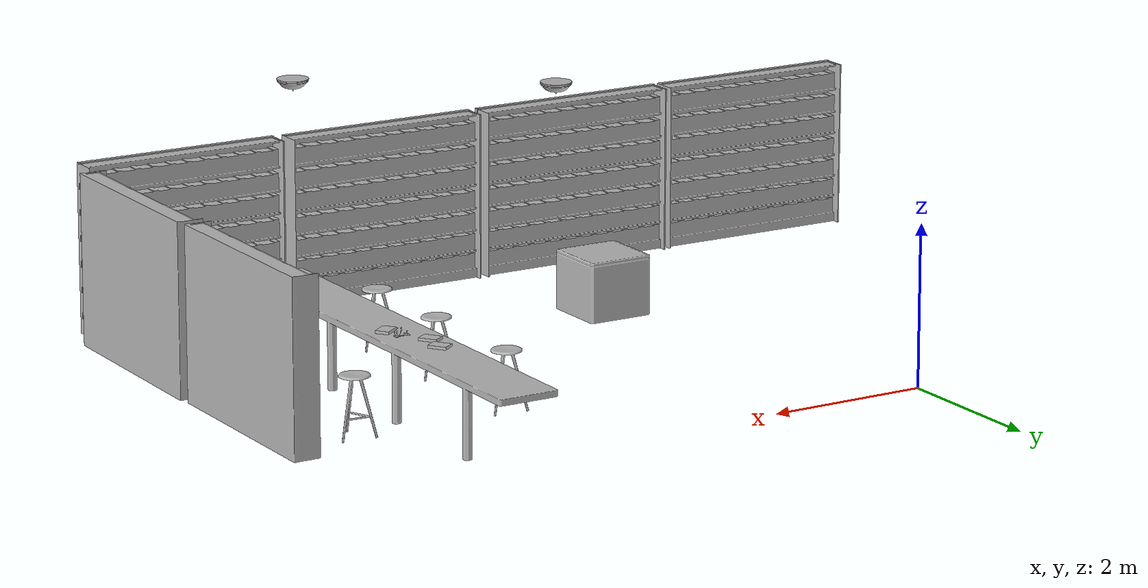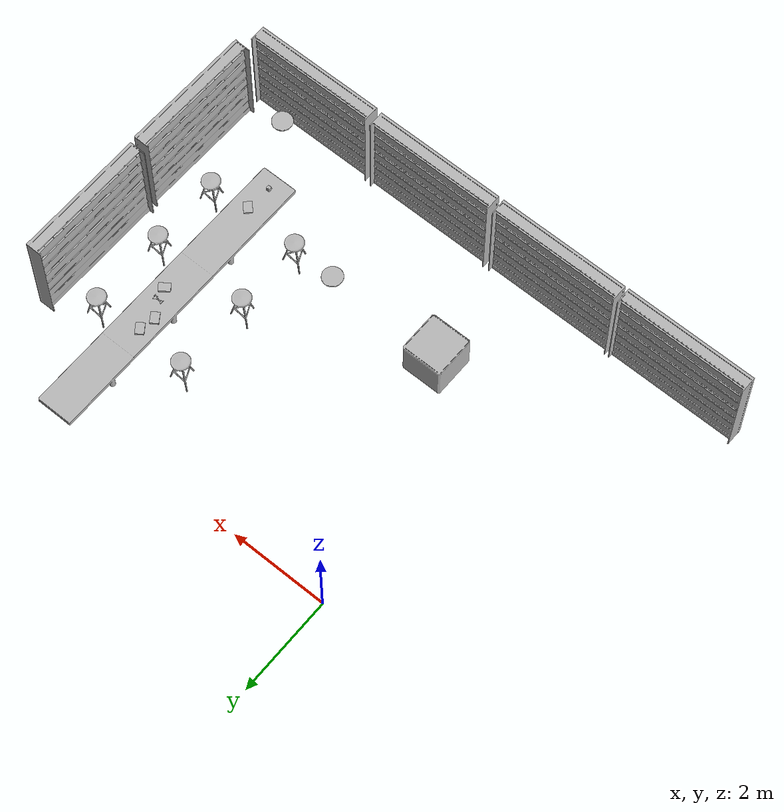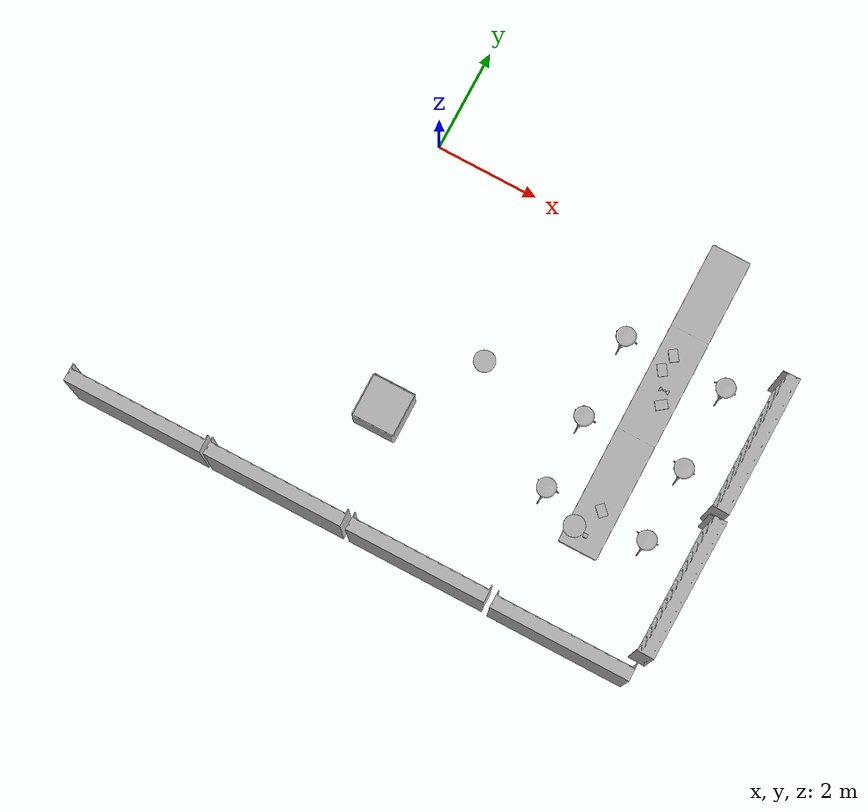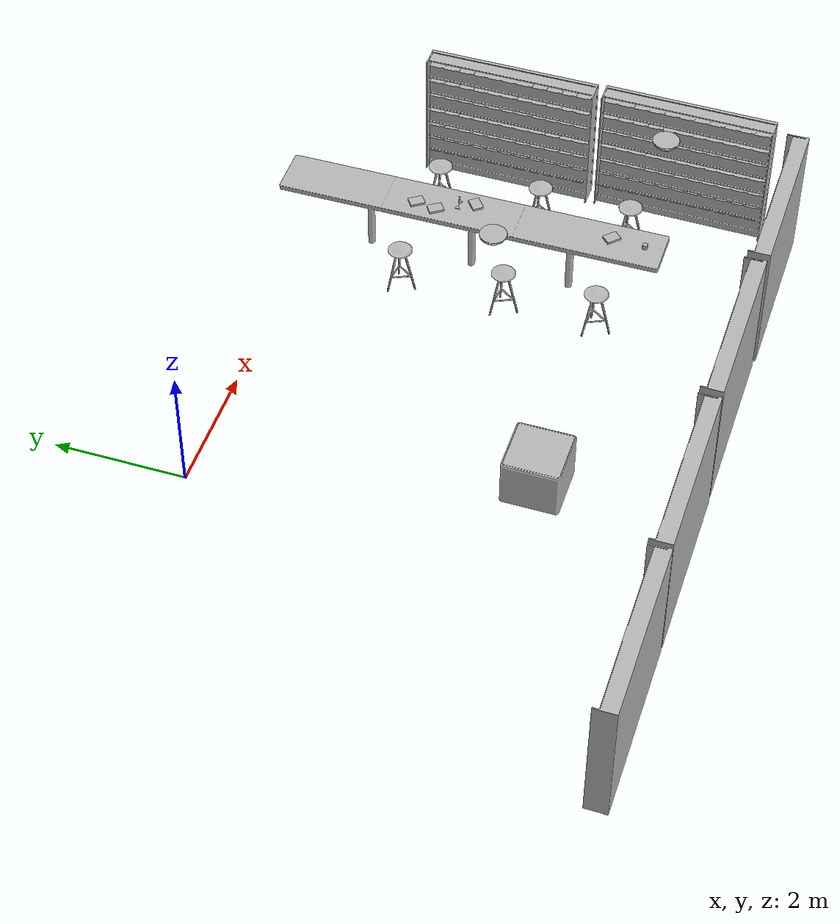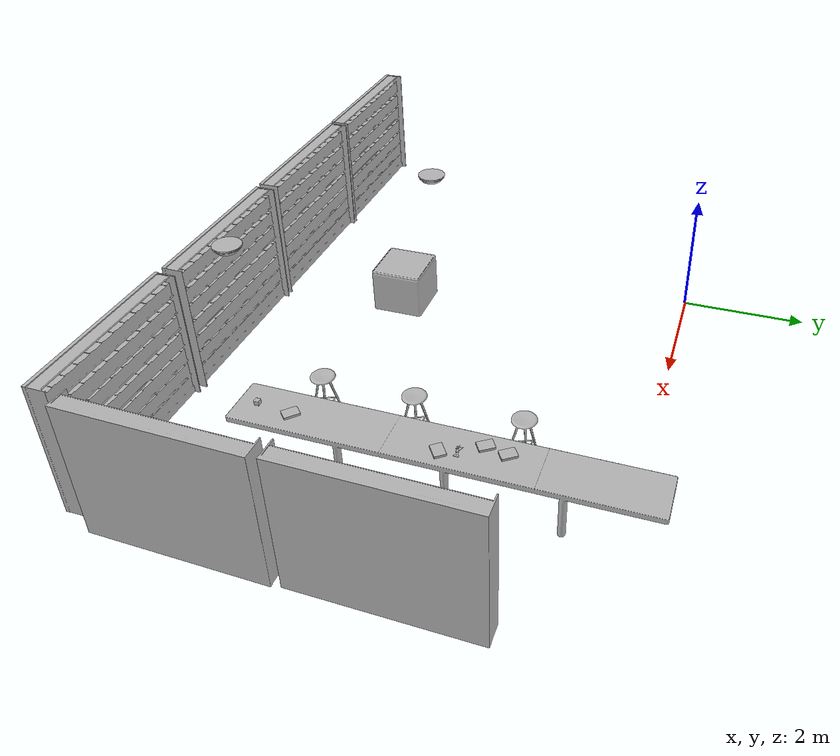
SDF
<sdf version="1.7">
 <world name="default">
  <model name="Bicycle_01_001">
   <frame name="aws_robomaker_retail_Bicycle_01::__model__" attached_to="aws_robomaker_retail_Bicycle_01::link">
    <pose relative_to="__model__">0 0 0 0 -0 0</pose>
   </frame>
   <link name="aws_robomaker_retail_Bicycle_01::link">
    <inertial>
     <mass>0.04</mass>
     <inertia><ixx>0.1</ixx><ixy>0</ixy><ixz>0</ixz><iyy>0.1</iyy><iyz>0</iyz><izz>0.01</izz></inertia>
    </inertial>
    <collision name="collision">
     <geometry>
      <mesh>
       <uri>file://models/aws_robomaker_retail_Bicycle_01/meshes/aws_Bicycle_01_collision.DAE</uri>
       <scale>1 1 1</scale>
      </mesh>
     </geometry>
    </collision>
    <visual name="visual">
     <geometry>
      <mesh><uri>file://models/aws_robomaker_retail_Bicycle_01/meshes/aws_Bicycle_01_visual.DAE</uri></mesh>
     </geometry>
     <meta><layer>1</layer></meta>
    </visual>
    <pose relative_to="aws_robomaker_retail_Bicycle_01::__model__">0 0 0 0 -0 0</pose>
   </link>
   <static>1</static>
   <pose>5.68125 -2.24245 0.931246 2e-06 -2.4e-05 -0</pose>
  </model>
  <model name="BookE_01_001">
   <frame name="aws_robomaker_retail_BookE_01::__model__" attached_to="aws_robomaker_retail_BookE_01::link">
    <pose relative_to="__model__">0 0 0 0 -0 0</pose>
   </frame>
   <link name="aws_robomaker_retail_BookE_01::link">
    <inertial>
     <mass>1</mass>
     <inertia><ixy>0</ixy><ixz>0</ixz><iyz>0</iyz><ixx>0.0666</ixx><iyy>0.0346</iyy><izz>0.0986</izz></inertia>
    </inertial>
    <collision name="collision">
     <geometry>
      <mesh>
       <uri>file://models/aws_robomaker_retail_BookE_01/meshes/aws_BookE_01_collision.DAE</uri>
       <scale>1 1 1</scale>
      </mesh>
     </geometry>
    </collision>
    <visual name="visual">
     <geometry>
      <mesh><uri>file://models/aws_robomaker_retail_BookE_01/meshes/aws_BookE_01_visual.DAE</uri></mesh>
     </geometry>
     <meta><layer>1</layer></meta>
    </visual>
    <pose relative_to="aws_robomaker_retail_BookE_01::__model__">0 0 0 0 -0 0</pose>
   </link>
   <static>1</static>
   <pose>5.47653 -1.93253 0.948933 4e-06 1e-06 -2.54352</pose>
  </model>
  <model name="BookE_01_004">
   <frame name="aws_robomaker_retail_BookE_01::__model__" attached_to="aws_robomaker_retail_BookE_01::link">
    <pose relative_to="__model__">0 0 0 0 -0 0</pose>
   </frame>
   <link name="aws_robomaker_retail_BookE_01::link">
    <inertial>
     <mass>1</mass>
     <inertia><ixy>0</ixy><ixz>0</ixz><iyz>0</iyz><ixx>0.0666</ixx><iyy>0.0346</iyy><izz>0.0986</izz></inertia>
    </inertial>
    <collision name="collision">
     <geometry>
      <mesh>
       <uri>file://models/aws_robomaker_retail_BookE_01/meshes/aws_BookE_01_collision.DAE</uri>
       <scale>1 1 1</scale>
      </mesh>
     </geometry>
    </collision>
    <visual name="visual">
     <geometry>
      <mesh><uri>file://models/aws_robomaker_retail_BookE_01/meshes/aws_BookE_01_visual.DAE</uri></mesh>
     </geometry>
     <meta><layer>1</layer></meta>
    </visual>
    <pose relative_to="aws_robomaker_retail_BookE_01::__model__">0 0 0 0 -0 0</pose>
   </link>
   <static>1</static>
   <pose>5.67723 -4.6492 0.946394 0.0001 6e-06 -2.35575</pose>
  </model>
  <model name="BookE_01_005">
   <frame name="aws_robomaker_retail_BookE_01::__model__" attached_to="aws_robomaker_retail_BookE_01::link">
    <pose relative_to="__model__">0 0 0 0 -0 0</pose>
   </frame>
   <link name="aws_robomaker_retail_BookE_01::link">
    <inertial>
     <mass>1</mass>
     <inertia><ixy>0</ixy><ixz>0</ixz><iyz>0</iyz><ixx>0.0666</ixx><iyy>0.0346</iyy><izz>0.0986</izz></inertia>
    </inertial>
    <collision name="collision">
     <geometry>
      <mesh>
       <uri>file://models/aws_robomaker_retail_BookE_01/meshes/aws_BookE_01_collision.DAE</uri>
       <scale>1 1 1</scale>
      </mesh>
     </geometry>
    </collision>
    <visual name="visual">
     <geometry>
      <mesh><uri>file://models/aws_robomaker_retail_BookE_01/meshes/aws_BookE_01_visual.DAE</uri></mesh>
     </geometry>
     <meta><layer>1</layer></meta>
    </visual>
    <pose relative_to="aws_robomaker_retail_BookE_01::__model__">0 0 0 0 -0 0</pose>
   </link>
   <static>1</static>
   <pose>5.53815 -1.61032 0.948933 0 0 -2.5269</pose>
  </model>
  <model name="BookE_01_011">
   <frame name="aws_robomaker_retail_BookE_01::__model__" attached_to="aws_robomaker_retail_BookE_01::link">
    <pose relative_to="__model__">0 0 0 0 -0 0</pose>
   </frame>
   <link name="aws_robomaker_retail_BookE_01::link">
    <inertial>
     <mass>1</mass>
     <inertia><ixy>0</ixy><ixz>0</ixz><iyz>0</iyz><ixx>0.0666</ixx><iyy>0.0346</iyy><izz>0.0986</izz></inertia>
    </inertial>
    <collision name="collision">
     <geometry>
      <mesh>
       <uri>file://models/aws_robomaker_retail_BookE_01/meshes/aws_BookE_01_collision.DAE</uri>
       <scale>1 1 1</scale>
      </mesh>
     </geometry>
    </collision>
    <visual name="visual">
     <geometry>
      <mesh><uri>file://models/aws_robomaker_retail_BookE_01/meshes/aws_BookE_01_visual.DAE</uri></mesh>
     </geometry>
     <meta><layer>1</layer></meta>
    </visual>
    <pose relative_to="aws_robomaker_retail_BookE_01::__model__">0 0 0 0 -0 0</pose>
   </link>
   <static>1</static>
   <pose>5.74923 -2.49202 0.948933 2e-06 1e-06 2.22339</pose>
  </model>
  <model name="BookshelfB_01_002">
   <frame name="aws_robomaker_retail_BookshelfB_01::__model__" attached_to="aws_robomaker_retail_BookshelfB_01::link">
    <pose relative_to="__model__">0 0 0 0 -0 0</pose>
   </frame>
   <link name="aws_robomaker_retail_BookshelfB_01::link">
    <inertial>
     <mass>50</mass>
     <inertia><ixx>19.8742</ixx><ixy>0</ixy><ixz>0</ixz><iyy>49.1263</iyy><iyz>0</iyz><izz>30.2231</izz></inertia>
    </inertial>
    <collision name="collision">
     <geometry>
      <mesh>
       <uri>file://models/aws_robomaker_retail_BookshelfB_01/meshes/aws_BookshelfB_01_collision.DAE</uri>
       <scale>1 1 1</scale>
      </mesh>
     </geometry>
    </collision>
    <visual name="visual">
     <geometry>
      <mesh><uri>file://models/aws_robomaker_retail_BookshelfB_01/meshes/aws_BookshelfB_01_visual.DAE</uri></mesh>
     </geometry>
     <meta><layer>1</layer></meta>
    </visual>
    <pose relative_to="aws_robomaker_retail_BookshelfB_01::__model__">0 0 0 0 -0 0</pose>
   </link>
   <static>1</static>
   <pose>-2.20941 -6.97146 0.017074 -0.000128 -0.000252 0.000364</pose>
  </model>
  <model name="BookshelfB_01_003">
   <frame name="aws_robomaker_retail_BookshelfB_01::__model__" attached_to="aws_robomaker_retail_BookshelfB_01::link">
    <pose relative_to="__model__">0 0 0 0 -0 0</pose>
   </frame>
   <link name="aws_robomaker_retail_BookshelfB_01::link">
    <inertial>
     <mass>50</mass>
     <inertia><ixx>19.8742</ixx><ixy>0</ixy><ixz>0</ixz><iyy>49.1263</iyy><iyz>0</iyz><izz>30.2231</izz></inertia>
    </inertial>
    <collision name="collision">
     <geometry>
      <mesh>
       <uri>file://models/aws_robomaker_retail_BookshelfB_01/meshes/aws_BookshelfB_01_collision.DAE</uri>
       <scale>1 1 1</scale>
      </mesh>
     </geometry>
    </collision>
    <visual name="visual">
     <geometry>
      <mesh><uri>file://models/aws_robomaker_retail_BookshelfB_01/meshes/aws_BookshelfB_01_visual.DAE</uri></mesh>
     </geometry>
     <meta><layer>1</layer></meta>
    </visual>
    <pose relative_to="aws_robomaker_retail_BookshelfB_01::__model__">0 0 0 0 -0 0</pose>
   </link>
   <static>1</static>
   <pose>0.522246 -6.9715 0.017947 -0.003292 0 0</pose>
  </model>
  <model name="BookshelfB_01_004">
   <frame name="aws_robomaker_retail_BookshelfB_01::__model__" attached_to="aws_robomaker_retail_BookshelfB_01::link">
    <pose relative_to="__model__">0 0 0 0 -0 0</pose>
   </frame>
   <link name="aws_robomaker_retail_BookshelfB_01::link">
    <inertial>
     <mass>50</mass>
     <inertia><ixx>19.8742</ixx><ixy>0</ixy><ixz>0</ixz><iyy>49.1263</iyy><iyz>0</iyz><izz>30.2231</izz></inertia>
    </inertial>
    <collision name="collision">
     <geometry>
      <mesh>
       <uri>file://models/aws_robomaker_retail_BookshelfB_01/meshes/aws_BookshelfB_01_collision.DAE</uri>
       <scale>1 1 1</scale>
      </mesh>
     </geometry>
    </collision>
    <visual name="visual">
     <geometry>
      <mesh><uri>file://models/aws_robomaker_retail_BookshelfB_01/meshes/aws_BookshelfB_01_visual.DAE</uri></mesh>
     </geometry>
     <meta><layer>1</layer></meta>
    </visual>
    <pose relative_to="aws_robomaker_retail_BookshelfB_01::__model__">0 0 0 0 -0 0</pose>
   </link>
   <static>1</static>
   <pose>3.29339 -6.96366 0.017383 8e-06 -2e-06 -0</pose>
  </model>
  <model name="BookshelfB_01_005">
   <frame name="aws_robomaker_retail_BookshelfB_01::__model__" attached_to="aws_robomaker_retail_BookshelfB_01::link">
    <pose relative_to="__model__">0 0 0 0 -0 0</pose>
   </frame>
   <link name="aws_robomaker_retail_BookshelfB_01::link">
    <inertial>
     <mass>50</mass>
     <inertia><ixx>19.8742</ixx><ixy>0</ixy><ixz>0</ixz><iyy>49.1263</iyy><iyz>0</iyz><izz>30.2231</izz></inertia>
    </inertial>
    <collision name="collision">
     <geometry>
      <mesh>
       <uri>file://models/aws_robomaker_retail_BookshelfB_01/meshes/aws_BookshelfB_01_collision.DAE</uri>
       <scale>1 1 1</scale>
      </mesh>
     </geometry>
    </collision>
    <visual name="visual">
     <geometry>
      <mesh><uri>file://models/aws_robomaker_retail_BookshelfB_01/meshes/aws_BookshelfB_01_visual.DAE</uri></mesh>
     </geometry>
     <meta><layer>1</layer></meta>
    </visual>
    <pose relative_to="aws_robomaker_retail_BookshelfB_01::__model__">0 0 0 0 -0 0</pose>
   </link>
   <static>1</static>
   <pose>6.08038 -6.98766 0.017409 0.000174 4e-06 0</pose>
  </model>
  <model name="BookshelfB_01_006">
   <frame name="aws_robomaker_retail_BookshelfB_01::__model__" attached_to="aws_robomaker_retail_BookshelfB_01::link">
    <pose relative_to="__model__">0 0 0 0 -0 0</pose>
   </frame>
   <link name="aws_robomaker_retail_BookshelfB_01::link">
    <inertial>
     <mass>50</mass>
     <inertia><ixx>19.8742</ixx><ixy>0</ixy><ixz>0</ixz><iyy>49.1263</iyy><iyz>0</iyz><izz>30.2231</izz></inertia>
    </inertial>
    <collision name="collision">
     <geometry>
      <mesh>
       <uri>file://models/aws_robomaker_retail_BookshelfB_01/meshes/aws_BookshelfB_01_collision.DAE</uri>
       <scale>1 1 1</scale>
      </mesh>
     </geometry>
    </collision>
    <visual name="visual">
     <geometry>
      <mesh><uri>file://models/aws_robomaker_retail_BookshelfB_01/meshes/aws_BookshelfB_01_visual.DAE</uri></mesh>
     </geometry>
     <meta><layer>1</layer></meta>
    </visual>
    <pose relative_to="aws_robomaker_retail_BookshelfB_01::__model__">0 0 0 0 -0 0</pose>
   </link>
   <static>1</static>
   <pose>7.47833 -5.2983 0.017443 -0.001974 -0.000211 1.55406</pose>
  </model>
  <model name="BookshelfB_01_007">
   <frame name="aws_robomaker_retail_BookshelfB_01::__model__" attached_to="aws_robomaker_retail_BookshelfB_01::link">
    <pose relative_to="__model__">0 0 0 0 -0 0</pose>
   </frame>
   <link name="aws_robomaker_retail_BookshelfB_01::link">
    <inertial>
     <mass>50</mass>
     <inertia><ixx>19.8742</ixx><ixy>0</ixy><ixz>0</ixz><iyy>49.1263</iyy><iyz>0</iyz><izz>30.2231</izz></inertia>
    </inertial>
    <collision name="collision">
     <geometry>
      <mesh>
       <uri>file://models/aws_robomaker_retail_BookshelfB_01/meshes/aws_BookshelfB_01_collision.DAE</uri>
       <scale>1 1 1</scale>
      </mesh>
     </geometry>
    </collision>
    <visual name="visual">
     <geometry>
      <mesh><uri>file://models/aws_robomaker_retail_BookshelfB_01/meshes/aws_BookshelfB_01_visual.DAE</uri></mesh>
     </geometry>
     <meta><layer>1</layer></meta>
    </visual>
    <pose relative_to="aws_robomaker_retail_BookshelfB_01::__model__">0 0 0 0 -0 0</pose>
   </link>
   <static>1</static>
   <pose>7.47833 -2.51065 0.017402 1e-05 -1.3e-05 1.56207</pose>
  </model>
  <model name="BookshelfC_01_002">
   <frame name="aws_robomaker_retail_BookshelfC_01::__model__" attached_to="aws_robomaker_retail_BookshelfC_01::link">
    <pose relative_to="__model__">0 0 0 0 -0 0</pose>
   </frame>
   <link name="aws_robomaker_retail_BookshelfC_01::link">
    <inertial>
     <mass>50</mass>
     <inertia><ixx>5.5865</ixx><ixy>0</ixy><ixz>0</ixz><iyy>5.47324</iyy><iyz>0</iyz><izz>6.23277</izz></inertia>
    </inertial>
    <collision name="collision">
     <geometry>
      <mesh>
       <uri>file://models/aws_robomaker_retail_BookshelfC_01/meshes/aws_BookshelfC_01_collision.DAE</uri>
       <scale>1 1 1</scale>
      </mesh>
     </geometry>
    </collision>
    <visual name="visual">
     <geometry>
      <mesh><uri>file://models/aws_robomaker_retail_BookshelfC_01/meshes/aws_BookshelfC_01_visual.DAE</uri></mesh>
     </geometry>
     <meta><layer>1</layer></meta>
    </visual>
    <pose relative_to="aws_robomaker_retail_BookshelfC_01::__model__">0 0 0 0 -0 0</pose>
   </link>
   <static>1</static>
   <pose>1.40515 -4.76165 -0.003455 0.003452 -0 1.4e-05</pose>
  </model>
  <model name="ChairB_01_002">
   <frame name="aws_robomaker_retail_ChairB_01::__model__" attached_to="aws_robomaker_retail_ChairB_01::link">
    <pose relative_to="__model__">0 0 0 0 -0 0</pose>
   </frame>
   <link name="aws_robomaker_retail_ChairB_01::link">
    <inertial>
     <mass>3</mass>
     <inertia>
      <ixx>0.188185</ixx>
      <ixy>0</ixy>
      <ixz>0</ixz>
      <iyy>0.190617</iyy>
      <iyz>0</iyz>
      <izz>0.100999</izz>
     </inertia>
    </inertial>
    <collision name="collision">
     <geometry>
      <mesh>
       <uri>file://models/aws_robomaker_retail_ChairB_01/meshes/aws_ChairB_01_collision.DAE</uri>
       <scale>1 1 1</scale>
      </mesh>
     </geometry>
    </collision>
    <visual name="visual">
     <geometry>
      <mesh><uri>file://models/aws_robomaker_retail_ChairB_01/meshes/aws_ChairB_01_visual.DAE</uri></mesh>
     </geometry>
     <meta><layer>1</layer></meta>
    </visual>
    <pose relative_to="aws_robomaker_retail_ChairB_01::__model__">0 0 0 0 -0 0</pose>
   </link>
   <static>1</static>
   <pose>6.64396 -1.62199 0.022051 0 0.006174 8.8e-05</pose>
  </model>
  <model name="ChairB_01_003">
   <frame name="aws_robomaker_retail_ChairB_01::__model__" attached_to="aws_robomaker_retail_ChairB_01::link">
    <pose relative_to="__model__">0 0 0 0 -0 0</pose>
   </frame>
   <link name="aws_robomaker_retail_ChairB_01::link">
    <inertial>
     <mass>3</mass>
     <inertia>
      <ixx>0.188185</ixx>
      <ixy>0</ixy>
      <ixz>0</ixz>
      <iyy>0.190617</iyy>
      <iyz>0</iyz>
      <izz>0.100999</izz>
     </inertia>
    </inertial>
    <collision name="collision">
     <geometry>
      <mesh>
       <uri>file://models/aws_robomaker_retail_ChairB_01/meshes/aws_ChairB_01_collision.DAE</uri>
       <scale>1 1 1</scale>
      </mesh>
     </geometry>
    </collision>
    <visual name="visual">
     <geometry>
      <mesh><uri>file://models/aws_robomaker_retail_ChairB_01/meshes/aws_ChairB_01_visual.DAE</uri></mesh>
     </geometry>
     <meta><layer>1</layer></meta>
    </visual>
    <pose relative_to="aws_robomaker_retail_ChairB_01::__model__">0 0 0 0 -0 0</pose>
   </link>
   <static>1</static>
   <pose>6.64396 -3.24663 0.022051 0 0.006174 8.8e-05</pose>
  </model>
  <model name="ChairB_01_004">
   <frame name="aws_robomaker_retail_ChairB_01::__model__" attached_to="aws_robomaker_retail_ChairB_01::link">
    <pose relative_to="__model__">0 0 0 0 -0 0</pose>
   </frame>
   <link name="aws_robomaker_retail_ChairB_01::link">
    <inertial>
     <mass>3</mass>
     <inertia>
      <ixx>0.188185</ixx>
      <ixy>0</ixy>
      <ixz>0</ixz>
      <iyy>0.190617</iyy>
      <iyz>0</iyz>
      <izz>0.100999</izz>
     </inertia>
    </inertial>
    <collision name="collision">
     <geometry>
      <mesh>
       <uri>file://models/aws_robomaker_retail_ChairB_01/meshes/aws_ChairB_01_collision.DAE</uri>
       <scale>1 1 1</scale>
      </mesh>
     </geometry>
    </collision>
    <visual name="visual">
     <geometry>
      <mesh><uri>file://models/aws_robomaker_retail_ChairB_01/meshes/aws_ChairB_01_visual.DAE</uri></mesh>
     </geometry>
     <meta><layer>1</layer></meta>
    </visual>
    <pose relative_to="aws_robomaker_retail_ChairB_01::__model__">0 0 0 0 -0 0</pose>
   </link>
   <static>1</static>
   <pose>6.64396 -4.6816 0.022051 0 0.006174 8.8e-05</pose>
  </model>
  <model name="ChairB_01_006">
   <frame name="aws_robomaker_retail_ChairB_01::__model__" attached_to="aws_robomaker_retail_ChairB_01::link">
    <pose relative_to="__model__">0 0 0 0 -0 0</pose>
   </frame>
   <link name="aws_robomaker_retail_ChairB_01::link">
    <inertial>
     <mass>3</mass>
     <inertia>
      <ixx>0.188185</ixx>
      <ixy>0</ixy>
      <ixz>0</ixz>
      <iyy>0.190617</iyy>
      <iyz>0</iyz>
      <izz>0.100999</izz>
     </inertia>
    </inertial>
    <collision name="collision">
     <geometry>
      <mesh>
       <uri>file://models/aws_robomaker_retail_ChairB_01/meshes/aws_ChairB_01_collision.DAE</uri>
       <scale>1 1 1</scale>
      </mesh>
     </geometry>
    </collision>
    <visual name="visual">
     <geometry>
      <mesh><uri>file://models/aws_robomaker_retail_ChairB_01/meshes/aws_ChairB_01_visual.DAE</uri></mesh>
     </geometry>
     <meta><layer>1</layer></meta>
    </visual>
    <pose relative_to="aws_robomaker_retail_ChairB_01::__model__">0 0 0 0 -0 0</pose>
   </link>
   <static>1</static>
   <pose>4.6533 -1.62199 0.022051 0 0.006174 8.8e-05</pose>
  </model>
  <model name="ChairB_01_007">
   <frame name="aws_robomaker_retail_ChairB_01::__model__" attached_to="aws_robomaker_retail_ChairB_01::link">
    <pose relative_to="__model__">0 0 0 0 -0 0</pose>
   </frame>
   <link name="aws_robomaker_retail_ChairB_01::link">
    <inertial>
     <mass>3</mass>
     <inertia>
      <ixx>0.188185</ixx>
      <ixy>0</ixy>
      <ixz>0</ixz>
      <iyy>0.190617</iyy>
      <iyz>0</iyz>
      <izz>0.100999</izz>
     </inertia>
    </inertial>
    <collision name="collision">
     <geometry>
      <mesh>
       <uri>file://models/aws_robomaker_retail_ChairB_01/meshes/aws_ChairB_01_collision.DAE</uri>
       <scale>1 1 1</scale>
      </mesh>
     </geometry>
    </collision>
    <visual name="visual">
     <geometry>
      <mesh><uri>file://models/aws_robomaker_retail_ChairB_01/meshes/aws_ChairB_01_visual.DAE</uri></mesh>
     </geometry>
     <meta><layer>1</layer></meta>
    </visual>
    <pose relative_to="aws_robomaker_retail_ChairB_01::__model__">0 0 0 0 -0 0</pose>
   </link>
   <static>1</static>
   <pose>4.6533 -3.24663 0.022051 0 0.006174 8.8e-05</pose>
  </model>
  <model name="ChairB_01_008">
   <frame name="aws_robomaker_retail_ChairB_01::__model__" attached_to="aws_robomaker_retail_ChairB_01::link">
    <pose relative_to="__model__">0 0 0 0 -0 0</pose>
   </frame>
   <link name="aws_robomaker_retail_ChairB_01::link">
    <inertial>
     <mass>3</mass>
     <inertia>
      <ixx>0.188185</ixx>
      <ixy>0</ixy>
      <ixz>0</ixz>
      <iyy>0.190617</iyy>
      <iyz>0</iyz>
      <izz>0.100999</izz>
     </inertia>
    </inertial>
    <collision name="collision">
     <geometry>
      <mesh>
       <uri>file://models/aws_robomaker_retail_ChairB_01/meshes/aws_ChairB_01_collision.DAE</uri>
       <scale>1 1 1</scale>
      </mesh>
     </geometry>
    </collision>
    <visual name="visual">
     <geometry>
      <mesh><uri>file://models/aws_robomaker_retail_ChairB_01/meshes/aws_ChairB_01_visual.DAE</uri></mesh>
     </geometry>
     <meta><layer>1</layer></meta>
    </visual>
    <pose relative_to="aws_robomaker_retail_ChairB_01::__model__">0 0 0 0 -0 0</pose>
   </link>
   <static>1</static>
   <pose>4.6533 -4.6816 0.022051 0 0.006174 8.8e-05</pose>
  </model>
  <model name="DeskB_01_001">
   <frame name="aws_robomaker_retail_DeskB_01::__model__" attached_to="aws_robomaker_retail_DeskB_01::link">
    <pose relative_to="__model__">0 0 0 0 -0 0</pose>
   </frame>
   <link name="aws_robomaker_retail_DeskB_01::link">
    <inertial>
     <mass>50</mass>
     <inertia><ixx>154.884</ixx><ixy>0</ixy><ixz>0</ixz><iyy>7.48424</iyy><iyz>0</iyz><izz>152.099</izz></inertia>
    </inertial>
    <collision name="collision">
     <geometry>
      <mesh>
       <uri>file://models/aws_robomaker_retail_DeskB_01/meshes/aws_DeskB_01_collision.DAE</uri>
       <scale>1 1 1</scale>
      </mesh>
     </geometry>
    </collision>
    <visual name="visual">
     <geometry>
      <mesh><uri>file://models/aws_robomaker_retail_DeskB_01/meshes/aws_DeskB_01_visual.DAE</uri></mesh>
     </geometry>
     <meta><layer>1</layer></meta>
    </visual>
    <pose relative_to="aws_robomaker_retail_DeskB_01::__model__">0 0 0 0 -0 0</pose>
   </link>
   <static>1</static>
   <pose>5.62294 -2.47542 -0.181282 0 -0 0</pose>
  </model>
  <model name="LightA_01_001">
   <frame name="aws_robomaker_retail_LightA_01::__model__" attached_to="aws_robomaker_retail_LightA_01::link">
    <pose relative_to="__model__">0 0 0 0 -0 0</pose>
   </frame>
   <link name="aws_robomaker_retail_LightA_01::link">
    <inertial><mass>1</mass></inertial>
    <collision name="collision">
     <geometry>
      <mesh>
       <uri>file://models/aws_robomaker_retail_LightA_01/meshes/aws_LightA_01_collision.DAE</uri>
       <scale>1 1 1</scale>
      </mesh>
     </geometry>
    </collision>
    <visual name="visual">
     <geometry>
      <mesh><uri>file://models/aws_robomaker_retail_LightA_01/meshes/aws_LightA_01_visual.DAE</uri></mesh>
     </geometry>
     <meta><layer>3</layer></meta>
    </visual>
    <pose relative_to="aws_robomaker_retail_LightA_01::__model__">0 0 0 0 -0 0</pose>
   </link>
   <static>1</static>
   <pose>2.77442 -3.62815 3.15033 0 -0 0</pose>
  </model>
  <model name="LightA_01_002">
   <frame name="aws_robomaker_retail_LightA_01::__model__" attached_to="aws_robomaker_retail_LightA_01::link">
    <pose relative_to="__model__">0 0 0 0 -0 0</pose>
   </frame>
   <link name="aws_robomaker_retail_LightA_01::link">
    <inertial><mass>1</mass></inertial>
    <collision name="collision">
     <geometry>
      <mesh>
       <uri>file://models/aws_robomaker_retail_LightA_01/meshes/aws_LightA_01_collision.DAE</uri>
       <scale>1 1 1</scale>
      </mesh>
     </geometry>
    </collision>
    <visual name="visual">
     <geometry>
      <mesh><uri>file://models/aws_robomaker_retail_LightA_01/meshes/aws_LightA_01_visual.DAE</uri></mesh>
     </geometry>
     <meta><layer>3</layer></meta>
    </visual>
    <pose relative_to="aws_robomaker_retail_LightA_01::__model__">0 0 0 0 -0 0</pose>
   </link>
   <static>1</static>
   <pose>5.38399 -5.38371 3.15033 0 -0 0</pose>
  </model>
  <model name="MagicCube_01_001">
   <frame name="aws_robomaker_retail_MagicCube_01::__model__" attached_to="aws_robomaker_retail_MagicCube_01::link">
    <pose relative_to="__model__">0 0 0 0 -0 0</pose>
   </frame>
   <link name="aws_robomaker_retail_MagicCube_01::link">
    <inertial>
     <mass>0.2</mass>
     <inertia><ixx>0.01</ixx><ixy>0</ixy><ixz>0</ixz><iyy>0.01</iyy><iyz>0</iyz><izz>0.01</izz></inertia>
    </inertial>
    <collision name="collision">
     <geometry>
      <mesh>
       <uri>file://models/aws_robomaker_retail_MagicCube_01/meshes/aws_MagicCube_01_collision.DAE</uri>
       <scale>1 1 1</scale>
      </mesh>
     </geometry>
    </collision>
    <visual name="visual">
     <geometry>
      <mesh><uri>file://models/aws_robomaker_retail_MagicCube_01/meshes/aws_MagicCube_01_visual.DAE</uri></mesh>
     </geometry>
     <meta><layer>1</layer></meta>
    </visual>
    <pose relative_to="aws_robomaker_retail_MagicCube_01::__model__">0 0 0 0 -0 0</pose>
   </link>
   <static>1</static>
   <pose>5.66756 -5.17491 0.968597 1.55994 -1e-06 -1.55541</pose>
  </model>
 </world>
</sdf>
